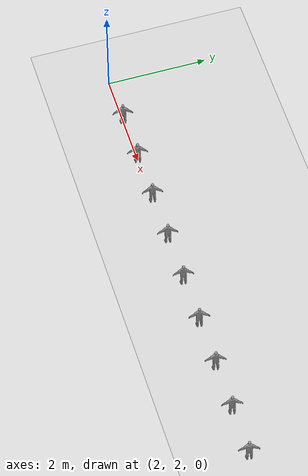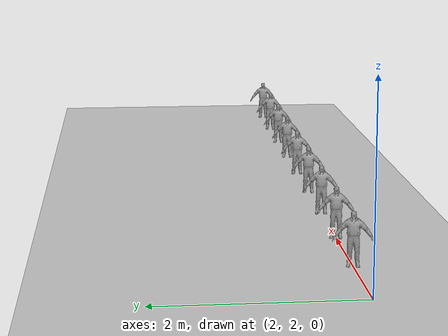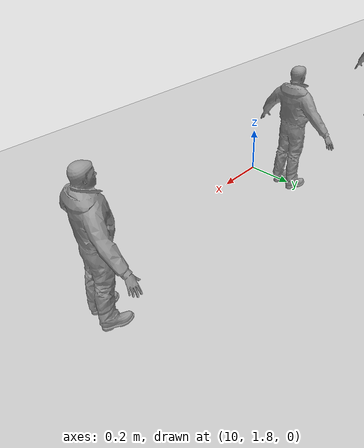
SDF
<sdf version='1.6'>
  <world name='neupan_corridor_crosses'>
    <plugin name="gazebo_ros_init" filename="libgazebo_ros_init.so">
      <publish_rate>100</publish_rate>
    </plugin>
    <plugin name="gazebo_ros_factory" filename="libgazebo_ros_factory.so"/>
    <plugin name="gazebo_ros_state" filename="libgazebo_ros_state.so"/>

    <light name='sun' type='directional'>
      <cast_shadows>1</cast_shadows>
      <pose frame=''>0 0 10 0 -0 0</pose>
      <diffuse>0.8 0.8 0.8 1</diffuse>
      <specular>0.2 0.2 0.2 1</specular>
      <attenuation>
        <range>1000</range>
        <constant>0.9</constant>
        <linear>0.01</linear>
        <quadratic>0.001</quadratic>
      </attenuation>
      <direction>-0.5 0.1 -0.9</direction>
    </light>
    <model name='ground_plane'>
      <static>1</static>
      <link name='link'>
        <collision name='collision'>
          <geometry>
            <plane>
              <normal>0 0 1</normal>
              <size>100 100</size>
            </plane>
          </geometry>
          <surface>
            <friction>
              <ode>
                <mu>100</mu>
                <mu2>50</mu2>
              </ode>
              <torsional>
                <ode/>
              </torsional>
            </friction>
            <contact>
              <ode/>
            </contact>
            <bounce/>
          </surface>
          <max_contacts>10</max_contacts>
        </collision>
        <visual name='visual'>
          <cast_shadows>0</cast_shadows>
          <geometry>
            <plane>
              <normal>0 0 1</normal>
              <size>100 100</size>
            </plane>
          </geometry>
          <material>
            <script>
              <uri>file://media/materials/scripts/gazebo.material</uri>
              <name>Gazebo/Grey</name>
            </script>
          </material>
        </visual>
        <self_collide>0</self_collide>
        <enable_wind>0</enable_wind>
        <kinematic>0</kinematic>
      </link>
    </model>
    <gravity>0 0 -9.8</gravity>
    <magnetic_field>6e-06 2.3e-05 -4.2e-05</magnetic_field>
    <atmosphere type='adiabatic'/>
    <physics name='default_physics' default='0' type='ode'>
      <max_step_size>0.002</max_step_size>
      <real_time_factor>1</real_time_factor>
      <real_time_update_rate>1000</real_time_update_rate>
    </physics>
    <scene>
      <ambient>1 1 1 1</ambient>
      <background>1 1 1 1</background>
      <shadows>0</shadows>
    </scene>
    <audio>
      <device>default</device>
    </audio>
    <wind/>
    <spherical_coordinates>
      <surface_model>EARTH_WGS84</surface_model>
      <latitude_deg>0</latitude_deg>
      <longitude_deg>0</longitude_deg>
      <elevation>0</elevation>
      <heading_deg>0</heading_deg>
    </spherical_coordinates>

    <include>
      <uri>model://pedestrian_obstacle</uri>
      <name>cross_clone_11</name>
      <pose>3.0 2.0 0 0 0 -1.75</pose>
    </include>

    <include>
      <uri>model://pedestrian_obstacle</uri>
      <name>cross_clone_12</name>
      <pose>4.0 2.0 0 0 -0 -1.75</pose>
    </include>

    <include>
      <uri>model://pedestrian_obstacle</uri>
      <name>cross_clone_13</name>
      <pose>5.0 2.0 0 0 -0 -1.75</pose>
    </include>

    <include>
      <uri>model://pedestrian_obstacle</uri>
      <name>cross_clone_14</name>
      <pose>6.0 2.0 0 0 -0 -1.75</pose>
    </include>

    <include>
      <uri>model://pedestrian_obstacle</uri>
      <name>cross_clone_15</name>
      <pose>7.0 2.0 0 0 -0 -1.75</pose>
    </include>

    <include>
      <uri>model://pedestrian_obstacle</uri>
      <name>cross_clone_16</name>
      <pose>8.0 2.0 0 0 -0 -1.75</pose>
    </include>

    <include>
      <uri>model://pedestrian_obstacle</uri>
      <name>cross_clone_17</name>
      <pose>9.0 2.0 0 0 -0 -1.75</pose>
    </include>

    <include>
      <uri>model://pedestrian_obstacle</uri>
      <name>cross_clone_18</name>
      <pose>10.0 2.0 0 0 -0 -1.75</pose>
    </include>

    <include>
      <uri>model://pedestrian_obstacle</uri>
      <name>cross_clone_19</name>
      <pose>11.0 2.0 0 0 -0 -1.75</pose>
    </include>

    <gui fullscreen='0'>
      <camera name='user_camera'>
        <pose frame=''>5.65929 -6.28845 11.5357 0 1.03554 1.29588</pose>
        <view_controller>orbit</view_controller>
        <projection_type>perspective</projection_type>
      </camera>
    </gui>

  </world>
</sdf>

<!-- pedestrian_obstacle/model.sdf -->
<sdf version="1.6">
  <model name="pedestrian_obstacle">
    <static>false</static>
    <allow_auto_disable>false</allow_auto_disable>
    <link name="body">
      <kinematic>true</kinematic>
      <gravity>false</gravity>
      <inertial>
        <mass>35.0</mass>
        <inertia>
          <ixx>1.0</ixx>
          <iyy>1.0</iyy>
          <izz>1.0</izz>
          <ixy>0.0</ixy>
          <ixz>0.0</ixz>
          <iyz>0.0</iyz>
        </inertia>
      </inertial>

      <collision name="collision">
        <pose>0 0 0.8 0 0 0</pose>
        <geometry>
          <cylinder>
            <radius>0.10</radius>
            <length>1.6</length>
          </cylinder>
        </geometry>
        <surface>
          <friction>
            <ode>
              <mu>0.0</mu>
              <mu2>0.0</mu2>
            </ode>
          </friction>
          <contact>
            <ode>
              <kp>1000000.0</kp>
              <kd>1.0</kd>
              <max_vel>0.1</max_vel>
              <min_depth>0.001</min_depth>
            </ode>
          </contact>
        </surface>
      </collision>

      <visual name="randy">
        <pose>0 0 0 0 0 0</pose>
        <geometry>
          <mesh>
            <uri>model://pedestrian_obstacle/meshes/rescue_randy.dae</uri>
            <scale>0.3 0.3 0.3</scale>
          </mesh>
        </geometry>
        <material>
          <script>
            <uri>model://pedestrian_obstacle/materials/scripts</uri>
            <uri>model://pedestrian_obstacle/materials/textures</uri>
            <name>RescueRandy/Diffuse</name>
          </script>
          <pbr>
            <metal>
              <albedo_map>model://pedestrian_obstacle/materials/textures/rescue_randy_albedo.png</albedo_map>
              <normal_map>model://pedestrian_obstacle/materials/textures/rescue_randy_normal.png</normal_map>
              <metalness_map>model://pedestrian_obstacle/materials/textures/rescue_randy_metalness.png</metalness_map>
              <roughness_map>model://pedestrian_obstacle/materials/textures/rescue_randy_roughness.png</roughness_map>
            </metal>
          </pbr>
        </material>
      </visual>
    </link>
  </model>
</sdf>
